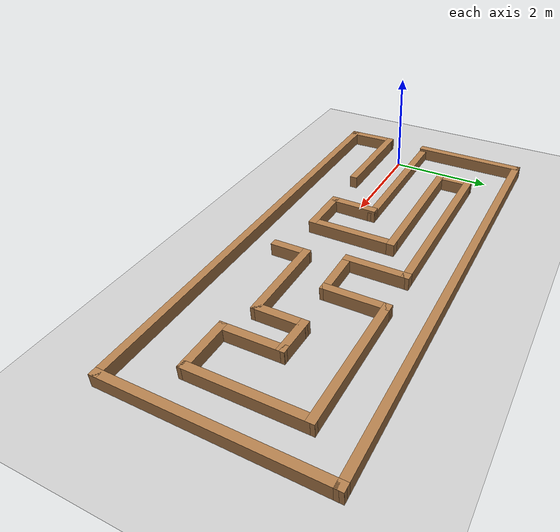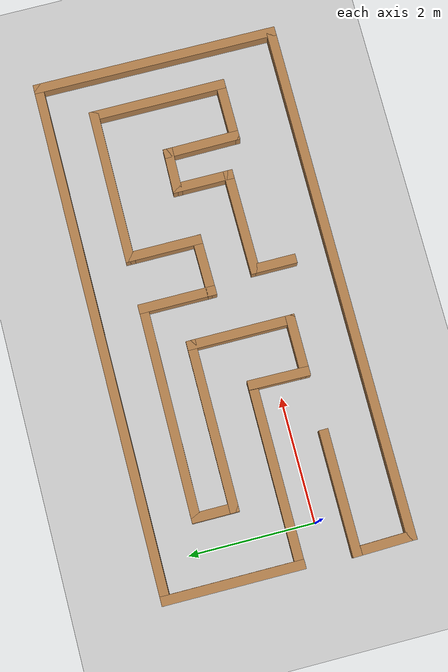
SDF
<sdf version="1.6">
 <world name="default">
  <light name="sun" type="directional">
   <pose>0 0 10 0 -0 0</pose>
   <diffuse>0.8 0.8 0.8 1</diffuse>
   <specular>0.2 0.2 0.2 1</specular>
   <attenuation>
    <range>1000</range>
    <constant>0.9</constant>
    <linear>0.01</linear>
    <quadratic>0.001</quadratic>
   </attenuation>
   <direction>-0.5 0.1 -0.9</direction>
  </light>
  <model name="ground_plane">
   <static>1</static>
   <link name="link">
    <collision name="collision">
     <geometry><plane><normal>0 0 1</normal><size>100 100</size></plane></geometry>
     <surface>
      <contact><collide_bitmask>65535</collide_bitmask></contact>
      <friction><ode><mu>100</mu><mu2>50</mu2></ode></friction>
     </surface>
    </collision>
    <visual name="visual">
     <cast_shadows>0</cast_shadows>
     <geometry><plane><normal>0 0 1</normal><size>100 100</size></plane></geometry>
     <material>
      <script><uri>file://media/materials/scripts/gazebo.material</uri><name>Gazebo/Grey</name></script>
     </material>
    </visual>
   </link>
  </model>
  <gravity>0 0 -9.8</gravity>
  <magnetic_field>6e-06 2.3e-05 -4.2e-05</magnetic_field>
  <atmosphere type="adiabatic"/>
  <physics name="default_physics" default="0" type="ode">
   <max_step_size>0.001</max_step_size>
   <real_time_factor>1</real_time_factor>
   <real_time_update_rate>1000</real_time_update_rate>
  </physics>
  <scene><ambient>0.4 0.4 0.4 1</ambient><background>0.7 0.7 0.7 1</background><shadows>1</shadows></scene>
  <audio><device>default</device></audio>
  <spherical_coordinates>
   <surface_model>EARTH_WGS84</surface_model>
   <latitude_deg>0</latitude_deg>
   <longitude_deg>0</longitude_deg>
   <elevation>0</elevation>
   <heading_deg>0</heading_deg>
  </spherical_coordinates>
  <model name="test_world1">
   <pose>3.59911 0.571845 0 0 -0 0</pose>
   <link name="Wall_0">
    <collision name="Wall_0_Collision">
     <geometry><box><size>2.262 0.15 0.25</size></box></geometry>
     <pose>0 0 0.125 0 -0 0</pose>
    </collision>
    <visual name="Wall_0_Visual">
     <pose>0 0 0.125 0 -0 0</pose>
     <geometry><box><size>2.262 0.15 0.25</size></box></geometry>
     <material>
      <script><uri>file://media/materials/scripts/gazebo.material</uri><name>Gazebo/Wood</name></script>
      <ambient>1 1 1 1</ambient>
     </material>
     <meta><layer>0</layer></meta>
    </visual>
    <pose>-4.15714 0.875364 0 0 -0 1.57032</pose>
   </link>
   <link name="Wall_1">
    <collision name="Wall_1_Collision">
     <geometry><box><size>8.489 0.15 0.25</size></box></geometry>
     <pose>0 0 0.125 0 -0 0</pose>
    </collision>
    <visual name="Wall_1_Visual">
     <pose>0 0 0.125 0 -0 0</pose>
     <geometry><box><size>8.489 0.15 0.25</size></box></geometry>
     <material>
      <script><uri>file://media/materials/scripts/gazebo.material</uri><name>Gazebo/Wood</name></script>
      <ambient>1 1 1 1</ambient>
     </material>
     <meta><layer>0</layer></meta>
    </visual>
    <pose>0.012859 1.93136 0 0 -0 0</pose>
   </link>
   <link name="Wall_10">
    <collision name="Wall_10_Collision">
     <geometry><box><size>0.75 0.15 0.25</size></box></geometry>
     <pose>0 0 0.125 0 -0 0</pose>
    </collision>
    <visual name="Wall_10_Visual">
     <pose>0 0 0.125 0 -0 0</pose>
     <geometry><box><size>0.75 0.15 0.25</size></box></geometry>
     <material>
      <script><uri>file://media/materials/scripts/gazebo.material</uri><name>Gazebo/Wood</name></script>
      <ambient>1 1 1 1</ambient>
     </material>
     <meta><layer>0</layer></meta>
    </visual>
    <pose>-3.06864 0.881364 0 0 -0 1.5708</pose>
   </link>
   <link name="Wall_11">
    <collision name="Wall_11_Collision">
     <geometry><box><size>3.5 0.15 0.25</size></box></geometry>
     <pose>0 0 0.125 0 -0 0</pose>
    </collision>
    <visual name="Wall_11_Visual">
     <pose>0 0 0.125 0 -0 0</pose>
     <geometry><box><size>3.5 0.15 0.25</size></box></geometry>
     <material>
      <script><uri>file://media/materials/scripts/gazebo.material</uri><name>Gazebo/Wood</name></script>
      <ambient>1 1 1 1</ambient>
     </material>
     <meta><layer>0</layer></meta>
    </visual>
    <pose>-1.39364 1.17536 0 0 -0 -0.003582</pose>
   </link>
   <link name="Wall_12">
    <collision name="Wall_12_Collision">
     <geometry><box><size>1.25 0.15 0.25</size></box></geometry>
     <pose>0 0 0.125 0 -0 0</pose>
    </collision>
    <visual name="Wall_12_Visual">
     <pose>0 0 0.125 0 -0 0</pose>
     <geometry><box><size>1.25 0.15 0.25</size></box></geometry>
     <material>
      <script><uri>file://media/materials/scripts/gazebo.material</uri><name>Gazebo/Wood</name></script>
      <ambient>1 1 1 1</ambient>
     </material>
     <meta><layer>0</layer></meta>
    </visual>
    <pose>0.281359 0.619864 0 0 -0 -1.5708</pose>
   </link>
   <link name="Wall_13">
    <collision name="Wall_13_Collision">
     <geometry><box><size>1 0.15 0.25</size></box></geometry>
     <pose>0 0 0.125 0 -0 0</pose>
    </collision>
    <visual name="Wall_13_Visual">
     <pose>0 0 0.125 0 -0 0</pose>
     <geometry><box><size>1 0.15 0.25</size></box></geometry>
     <material>
      <script><uri>file://media/materials/scripts/gazebo.material</uri><name>Gazebo/Wood</name></script>
      <ambient>1 1 1 1</ambient>
     </material>
     <meta><layer>0</layer></meta>
    </visual>
    <pose>0.706359 0.075864 0 0 -0 0.01294</pose>
   </link>
   <link name="Wall_14">
    <collision name="Wall_14_Collision">
     <geometry><box><size>1.25 0.15 0.25</size></box></geometry>
     <pose>0 0 0.125 0 -0 0</pose>
    </collision>
    <visual name="Wall_14_Visual">
     <pose>0 0 0.125 0 -0 0</pose>
     <geometry><box><size>1.25 0.15 0.25</size></box></geometry>
     <material>
      <script><uri>file://media/materials/scripts/gazebo.material</uri><name>Gazebo/Wood</name></script>
      <ambient>1 1 1 1</ambient>
     </material>
     <meta><layer>0</layer></meta>
    </visual>
    <pose>1.13136 0.631364 0 0 -0 1.5708</pose>
   </link>
   <link name="Wall_15">
    <collision name="Wall_15_Collision">
     <geometry><box><size>2.53403 0.15 0.25</size></box></geometry>
     <pose>0 0 0.125 0 -0 0</pose>
    </collision>
    <visual name="Wall_15_Visual">
     <pose>0 0 0.125 0 -0 0</pose>
     <geometry><box><size>2.53403 0.15 0.25</size></box></geometry>
     <material>
      <script><uri>file://media/materials/scripts/gazebo.material</uri><name>Gazebo/Wood</name></script>
      <ambient>1 1 1 1</ambient>
     </material>
     <meta><layer>0</layer></meta>
    </visual>
    <pose>2.32336 1.17586 0 0 -0 -0.004614</pose>
   </link>
   <link name="Wall_16">
    <collision name="Wall_16_Collision">
     <geometry><box><size>2.238 0.15 0.25</size></box></geometry>
     <pose>0 0 0.125 0 -0 0</pose>
    </collision>
    <visual name="Wall_16_Visual">
     <pose>0 0 0.125 0 -0 0</pose>
     <geometry><box><size>2.238 0.15 0.25</size></box></geometry>
     <material>
      <script><uri>file://media/materials/scripts/gazebo.material</uri><name>Gazebo/Wood</name></script>
      <ambient>1 1 1 1</ambient>
     </material>
     <meta><layer>0</layer></meta>
    </visual>
    <pose>3.51536 0.126364 0 0 -0 -1.5708</pose>
   </link>
   <link name="Wall_17">
    <collision name="Wall_17_Collision">
     <geometry><box><size>1.035 0.15 0.25</size></box></geometry>
     <pose>0 0 0.125 0 -0 0</pose>
    </collision>
    <visual name="Wall_17_Visual">
     <pose>0 0 0.125 0 -0 0</pose>
     <geometry><box><size>1.035 0.15 0.25</size></box></geometry>
     <material>
      <script><uri>file://media/materials/scripts/gazebo.material</uri><name>Gazebo/Wood</name></script>
      <ambient>1 1 1 1</ambient>
     </material>
     <meta><layer>0</layer></meta>
    </visual>
    <pose>3.07286 -0.918636 0 0 -0 -3.13933</pose>
   </link>
   <link name="Wall_18">
    <collision name="Wall_18_Collision">
     <geometry><box><size>1.23906 0.15 0.25</size></box></geometry>
     <pose>0 0 0.125 0 -0 0</pose>
    </collision>
    <visual name="Wall_18_Visual">
     <pose>0 0 0.125 0 -0 0</pose>
     <geometry><box><size>1.23906 0.15 0.25</size></box></geometry>
     <material>
      <script><uri>file://media/materials/scripts/gazebo.material</uri><name>Gazebo/Wood</name></script>
      <ambient>1 1 1 1</ambient>
     </material>
     <meta><layer>0</layer></meta>
    </visual>
    <pose>2.62486 -0.375136 0 0 -0 1.5809</pose>
   </link>
   <link name="Wall_19">
    <collision name="Wall_19_Collision">
     <geometry><box><size>0.738122 0.15 0.25</size></box></geometry>
     <pose>0 0 0.125 0 -0 0</pose>
    </collision>
    <visual name="Wall_19_Visual">
     <pose>0 0 0.125 0 -0 0</pose>
     <geometry><box><size>0.738122 0.15 0.25</size></box></geometry>
     <material>
      <script><uri>file://media/materials/scripts/gazebo.material</uri><name>Gazebo/Wood</name></script>
      <ambient>1 1 1 1</ambient>
     </material>
     <meta><layer>0</layer></meta>
    </visual>
    <pose>2.32536 0.175364 0 0 -0 3.12119</pose>
   </link>
   <link name="Wall_2">
    <collision name="Wall_2_Collision">
     <geometry><box><size>4.011 0.15 0.25</size></box></geometry>
     <pose>0 0 0.125 0 -0 0</pose>
    </collision>
    <visual name="Wall_2_Visual">
     <pose>0 0 0.125 0 -0 0</pose>
     <geometry><box><size>4.011 0.15 0.25</size></box></geometry>
     <material>
      <script><uri>file://media/materials/scripts/gazebo.material</uri><name>Gazebo/Wood</name></script>
      <ambient>1 1 1 1</ambient>
     </material>
     <meta><layer>0</layer></meta>
    </visual>
    <pose>4.17636 0.000864 0 0 -0 -1.5739</pose>
   </link>
   <link name="Wall_20">
    <collision name="Wall_20_Collision">
     <geometry><box><size>1 0.15 0.25</size></box></geometry>
     <pose>0 0 0.125 0 -0 0</pose>
    </collision>
    <visual name="Wall_20_Visual">
     <pose>0 0 0.125 0 -0 0</pose>
     <geometry><box><size>1 0.15 0.25</size></box></geometry>
     <material>
      <script><uri>file://media/materials/scripts/gazebo.material</uri><name>Gazebo/Wood</name></script>
      <ambient>1 1 1 1</ambient>
     </material>
     <meta><layer>0</layer></meta>
    </visual>
    <pose>2.03136 -0.243636 0 0 -0 -1.5708</pose>
   </link>
   <link name="Wall_21">
    <collision name="Wall_21_Collision">
     <geometry><box><size>1.72704 0.15 0.25</size></box></geometry>
     <pose>0 0 0.125 0 -0 0</pose>
    </collision>
    <visual name="Wall_21_Visual">
     <pose>0 0 0.125 0 -0 0</pose>
     <geometry><box><size>1.72704 0.15 0.25</size></box></geometry>
     <material>
      <script><uri>file://media/materials/scripts/gazebo.material</uri><name>Gazebo/Wood</name></script>
      <ambient>1 1 1 1</ambient>
     </material>
     <meta><layer>0</layer></meta>
    </visual>
    <pose>1.24286 -0.674136 0 0 -0 -3.13462</pose>
   </link>
   <link name="Wall_22">
    <collision name="Wall_22_Collision">
     <geometry><box><size>0.751 0.15 0.25</size></box></geometry>
     <pose>0 0 0.125 0 -0 0</pose>
    </collision>
    <visual name="Wall_22_Visual">
     <pose>0 0 0.125 0 -0 0</pose>
     <geometry><box><size>0.751 0.15 0.25</size></box></geometry>
     <material>
      <script><uri>file://media/materials/scripts/gazebo.material</uri><name>Gazebo/Wood</name></script>
      <ambient>1 1 1 1</ambient>
     </material>
     <meta><layer>0</layer></meta>
    </visual>
    <pose>0.454359 -0.980136 0 0 -0 -1.5708</pose>
   </link>
   <link name="Wall_24">
    <collision name="Wall_24_Collision">
     <geometry><box><size>1.0223 0.15 0.25</size></box></geometry>
     <pose>0 0 0.125 0 -0 0</pose>
    </collision>
    <visual name="Wall_24_Visual">
     <pose>0 0 0.125 0 -0 0</pose>
     <geometry><box><size>1.0223 0.15 0.25</size></box></geometry>
     <material>
      <script><uri>file://media/materials/scripts/gazebo.material</uri><name>Gazebo/Wood</name></script>
      <ambient>1 1 1 1</ambient>
     </material>
     <meta><layer>0</layer></meta>
    </visual>
    <pose>-4.16914 -1.49364 0 0 -0 1.59717</pose>
   </link>
   <link name="Wall_25">
    <collision name="Wall_25_Collision">
     <geometry><box><size>2 0.15 0.25</size></box></geometry>
     <pose>0 0 0.125 0 -0 0</pose>
    </collision>
    <visual name="Wall_25_Visual">
     <pose>0 0 0.125 0 -0 0</pose>
     <geometry><box><size>2 0.15 0.25</size></box></geometry>
     <material>
      <script><uri>file://media/materials/scripts/gazebo.material</uri><name>Gazebo/Wood</name></script>
      <ambient>1 1 1 1</ambient>
     </material>
     <meta><layer>0</layer></meta>
    </visual>
    <pose>-3.25564 -1.05764 0 0 -0 0</pose>
   </link>
   <link name="Wall_3">
    <collision name="Wall_3_Collision">
     <geometry><box><size>8.477 0.15 0.25</size></box></geometry>
     <pose>0 0 0.125 0 -0 0</pose>
    </collision>
    <visual name="Wall_3_Visual">
     <pose>0 0 0.125 0 -0 0</pose>
     <geometry><box><size>8.477 0.15 0.25</size></box></geometry>
     <material>
      <script><uri>file://media/materials/scripts/gazebo.material</uri><name>Gazebo/Wood</name></script>
      <ambient>1 1 1 1</ambient>
     </material>
     <meta><layer>0</layer></meta>
    </visual>
    <pose>0.006359 -1.92964 0 0 -0 3.14159</pose>
   </link>
   <link name="Wall_5">
    <collision name="Wall_5_Collision">
     <geometry><box><size>3 0.15 0.2</size></box></geometry>
     <pose>0 0 0.1 0 -0 0</pose>
    </collision>
    <visual name="Wall_5_Visual">
     <pose>0 0 0.1 0 -0 0</pose>
     <geometry><box><size>3 0.15 0.2</size></box></geometry>
     <material>
      <script><uri>file://media/materials/scripts/gazebo.material</uri><name>Gazebo/Wood</name></script>
      <ambient>1 1 1 1</ambient>
     </material>
     <meta><layer>0</layer></meta>
    </visual>
    <pose>-2.73264 -0.180636 0 0 -0 0</pose>
   </link>
   <link name="Wall_6">
    <collision name="Wall_6_Collision">
     <geometry><box><size>0.988072 0.15 0.25</size></box></geometry>
     <pose>0 0 0.125 0 -0 0</pose>
    </collision>
    <visual name="Wall_6_Visual">
     <pose>0 0 0.125 0 -0 0</pose>
     <geometry><box><size>0.988072 0.15 0.25</size></box></geometry>
     <material>
      <script><uri>file://media/materials/scripts/gazebo.material</uri><name>Gazebo/Wood</name></script>
      <ambient>1 1 1 1</ambient>
     </material>
     <meta><layer>0</layer></meta>
    </visual>
    <pose>-1.31314 -0.599636 0 0 -0 -1.58392</pose>
   </link>
   <link name="Wall_7">
    <collision name="Wall_7_Collision">
     <geometry><box><size>1 0.15 0.25</size></box></geometry>
     <pose>0 0 0.125 0 -0 0</pose>
    </collision>
    <visual name="Wall_7_Visual">
     <pose>0 0 0.125 0 -0 0</pose>
     <geometry><box><size>1 0.15 0.25</size></box></geometry>
     <material>
      <script><uri>file://media/materials/scripts/gazebo.material</uri><name>Gazebo/Wood</name></script>
      <ambient>1 1 1 1</ambient>
     </material>
     <meta><layer>0</layer></meta>
    </visual>
    <pose>-0.893641 -1.01864 0 0 -0 0</pose>
   </link>
   <link name="Wall_8">
    <collision name="Wall_8_Collision">
     <geometry><box><size>1.75 0.15 0.25</size></box></geometry>
     <pose>0 0 0.125 0 -0 0</pose>
    </collision>
    <visual name="Wall_8_Visual">
     <pose>0 0 0.125 0 -0 0</pose>
     <geometry><box><size>1.75 0.15 0.25</size></box></geometry>
     <material>
      <script><uri>file://media/materials/scripts/gazebo.material</uri><name>Gazebo/Wood</name></script>
      <ambient>1 1 1 1</ambient>
     </material>
     <meta><layer>0</layer></meta>
    </visual>
    <pose>-0.468641 -0.218636 0 0 -0 1.5708</pose>
   </link>
   <link name="Wall_9">
    <collision name="Wall_9_Collision">
     <geometry><box><size>2.75 0.15 0.25</size></box></geometry>
     <pose>0 0 0.125 0 -0 0</pose>
    </collision>
    <visual name="Wall_9_Visual">
     <pose>0 0 0.125 0 -0 0</pose>
     <geometry><box><size>2.75 0.15 0.25</size></box></geometry>
     <material>
      <script><uri>file://media/materials/scripts/gazebo.material</uri><name>Gazebo/Wood</name></script>
      <ambient>1 1 1 1</ambient>
     </material>
     <meta><layer>0</layer></meta>
    </visual>
    <pose>-1.76864 0.581364 0 0 -0 3.14159</pose>
   </link>
   <static>1</static>
  </model>
 </world>
</sdf>
